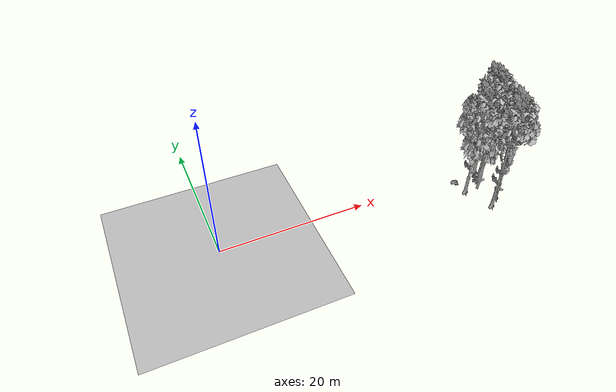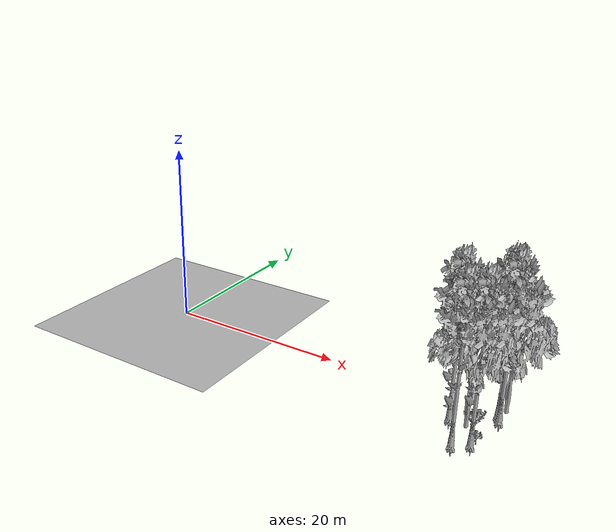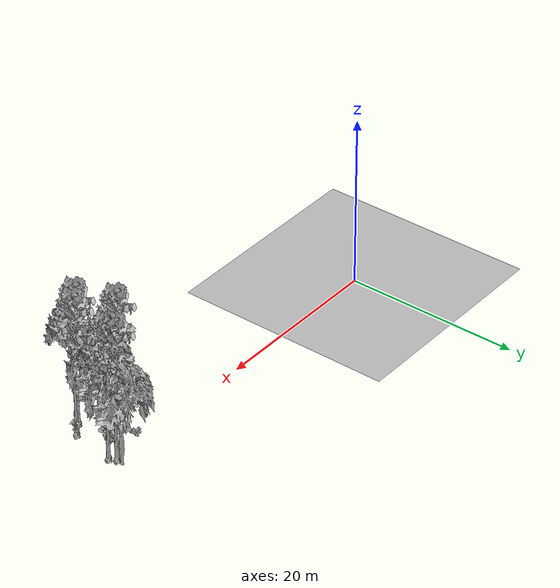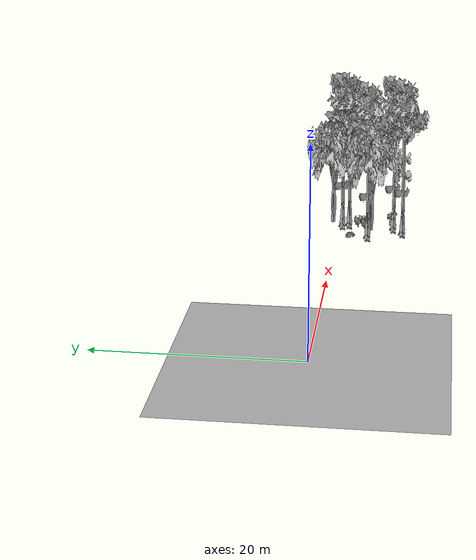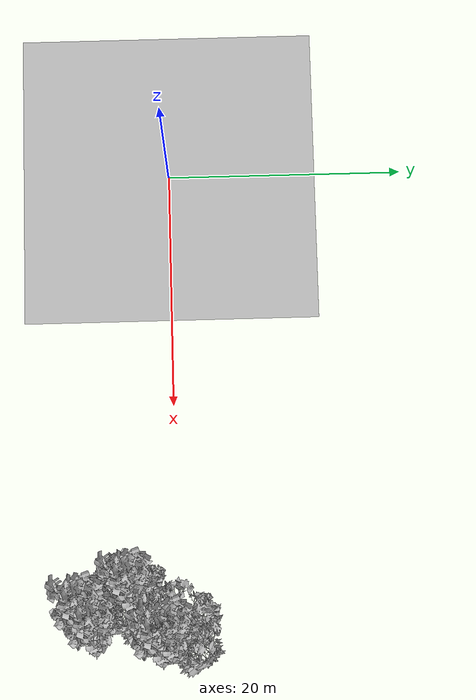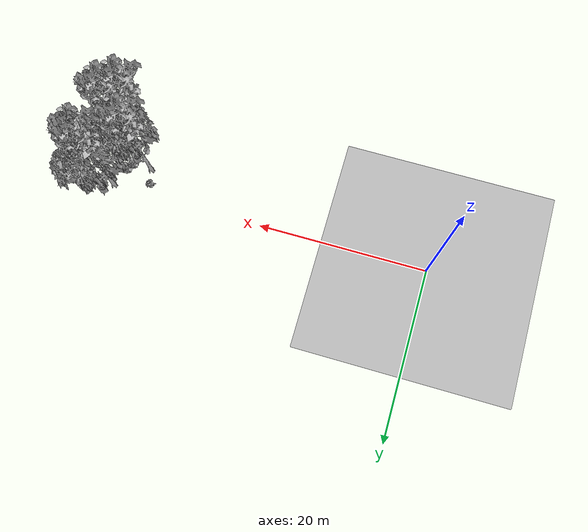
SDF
<sdf version="1.7">
 <world name="default">
  <model name="ground_plane">
   <static>1</static>
   <link name="link">
    <collision name="collision">
     <pose>-50 0 0 0 -0 0</pose>
     <geometry><plane><normal>0 0 1</normal><size>80 80</size></plane></geometry>
     <surface><contact><ode><min_depth>0.01</min_depth><max_vel>0</max_vel></ode></contact></surface>
    </collision>
    <visual name="grass">
     <cast_shadows>0</cast_shadows>
     <geometry>
      <mesh>
       <scale>0.46714285714285714 0.46714285714285714 0.1</scale>
       <uri>file://grass_plane/meshes/grass_plane.dae</uri>
      </mesh>
     </geometry>
    </visual>
   </link>
  </model>
  <model name="Tree 111">
   <static>1</static>
   <pose>36.2838748612335 -7.074095639635999 0 1.57079 -0 0</pose>
   <link name="link">
    <collision name="collision">
     <geometry><mesh><scale>3.5 5 3.5</scale><uri>model://tree_9/meshes/tree_9.obj</uri></mesh></geometry>
    </collision>
    <visual name="visual">
     <geometry><mesh><scale>3.5 5 3.5</scale><uri>model://tree_9/meshes/tree_9.obj</uri></mesh></geometry>
    </visual>
   </link>
  </model>
  <model name="Tree 334">
   <static>1</static>
   <pose>38.25983957889564 -0.2936260777369597 0 1.57079 -0 0</pose>
   <link name="link">
    <collision name="collision">
     <geometry><mesh><scale>3.5 5 3.5</scale><uri>model://tree_9/meshes/tree_9.obj</uri></mesh></geometry>
    </collision>
    <visual name="visual">
     <geometry><mesh><scale>3.5 5 3.5</scale><uri>model://tree_9/meshes/tree_9.obj</uri></mesh></geometry>
    </visual>
   </link>
  </model>
  <model name="Tree 404">
   <static>1</static>
   <pose>36.26148173920657 -3.5946910164059815 0 1.57079 -0 0</pose>
   <link name="link">
    <collision name="collision">
     <geometry><mesh><scale>3.5 5 3.5</scale><uri>model://tree_2/meshes/tree_2.obj</uri></mesh></geometry>
    </collision>
    <visual name="visual">
     <geometry><mesh><scale>3.5 5 3.5</scale><uri>model://tree_2/meshes/tree_2.obj</uri></mesh></geometry>
    </visual>
   </link>
  </model>
  <model name="Tree 512">
   <static>1</static>
   <pose>38.611465998514845 0.7733243995755927 0 1.57079 -0 0</pose>
   <link name="link">
    <collision name="collision">
     <geometry><mesh><scale>3.5 5 3.5</scale><uri>model://tree_2/meshes/tree_2.obj</uri></mesh></geometry>
    </collision>
    <visual name="visual">
     <geometry><mesh><scale>3.5 5 3.5</scale><uri>model://tree_2/meshes/tree_2.obj</uri></mesh></geometry>
    </visual>
   </link>
  </model>
  <model name="Tree 557">
   <static>1</static>
   <pose>37.69881469686317 -6.029298164993371 0 1.57079 -0 0</pose>
   <link name="link">
    <collision name="collision">
     <geometry><mesh><scale>3.5 5 3.5</scale><uri>model://tree_9/meshes/tree_9.obj</uri></mesh></geometry>
    </collision>
    <visual name="visual">
     <geometry><mesh><scale>3.5 5 3.5</scale><uri>model://tree_9/meshes/tree_9.obj</uri></mesh></geometry>
    </visual>
   </link>
  </model>
  <model name="Tree 606">
   <static>1</static>
   <pose>34.60119419439451 -3.29776864778367 0 1.57079 -0 0</pose>
   <link name="link">
    <collision name="collision">
     <geometry><mesh><scale>3.5 5 3.5</scale><uri>model://tree_9/meshes/tree_9.obj</uri></mesh></geometry>
    </collision>
    <visual name="visual">
     <geometry><mesh><scale>3.5 5 3.5</scale><uri>model://tree_9/meshes/tree_9.obj</uri></mesh></geometry>
    </visual>
   </link>
  </model>
  <model name="Tree 630">
   <static>1</static>
   <pose>38.6242029830653 -1.0374046306726967 0 1.57079 -0 0</pose>
   <link name="link">
    <collision name="collision">
     <geometry><mesh><scale>3.5 5 3.5</scale><uri>model://tree_9/meshes/tree_9.obj</uri></mesh></geometry>
    </collision>
    <visual name="visual">
     <geometry><mesh><scale>3.5 5 3.5</scale><uri>model://tree_9/meshes/tree_9.obj</uri></mesh></geometry>
    </visual>
   </link>
  </model>
  <model name="Bush 75">
   <static>1</static>
   <pose>36.98399716468735 -2.8200175105323737 0 1.57079 -0 0</pose>
   <link name="link">
    <collision name="collision">
     <geometry><mesh><scale>2 2 2</scale><uri>model://bush_0/meshes/bush_0.obj</uri></mesh></geometry>
     <surface><contact><collide_without_contact>false</collide_without_contact></contact></surface>
    </collision>
    <visual name="visual">
     <geometry><mesh><scale>2 2 2</scale><uri>model://bush_0/meshes/bush_0.obj</uri></mesh></geometry>
    </visual>
   </link>
  </model>
  <model name="Bush 155">
   <static>1</static>
   <pose>36.61003953071078 -2.8861989571893005 0 1.57079 -0 0</pose>
   <link name="link">
    <collision name="collision">
     <geometry><mesh><scale>2 2 2</scale><uri>model://bush_0/meshes/bush_0.obj</uri></mesh></geometry>
     <surface><contact><collide_without_contact>false</collide_without_contact></contact></surface>
    </collision>
    <visual name="visual">
     <geometry><mesh><scale>2 2 2</scale><uri>model://bush_0/meshes/bush_0.obj</uri></mesh></geometry>
    </visual>
   </link>
  </model>
  <model name="Bush 168">
   <static>1</static>
   <pose>34.007236156042126 -1.4637077121483983 0 1.57079 -0 0</pose>
   <link name="link">
    <collision name="collision">
     <geometry><mesh><scale>2 2 2</scale><uri>model://bush_2/meshes/bush_2.obj</uri></mesh></geometry>
     <surface><contact><collide_without_contact>false</collide_without_contact></contact></surface>
    </collision>
    <visual name="visual">
     <geometry><mesh><scale>2 2 2</scale><uri>model://bush_2/meshes/bush_2.obj</uri></mesh></geometry>
    </visual>
   </link>
  </model>
  <model name="Bush 233">
   <static>1</static>
   <pose>37.097777376069615 -2.1258721235891613 0 1.57079 -0 0</pose>
   <link name="link">
    <collision name="collision">
     <geometry><mesh><scale>2 2 2</scale><uri>model://bush_0/meshes/bush_0.obj</uri></mesh></geometry>
     <surface><contact><collide_without_contact>false</collide_without_contact></contact></surface>
    </collision>
    <visual name="visual">
     <geometry><mesh><scale>2 2 2</scale><uri>model://bush_0/meshes/bush_0.obj</uri></mesh></geometry>
    </visual>
   </link>
  </model>
  <model name="Bush 469">
   <static>1</static>
   <pose>38.03116943631795 -5.617014712144382 0 1.57079 -0 0</pose>
   <link name="link">
    <collision name="collision">
     <geometry><mesh><scale>2 2 2</scale><uri>model://bush_5/meshes/bush_5.obj</uri></mesh></geometry>
     <surface><contact><collide_without_contact>false</collide_without_contact></contact></surface>
    </collision>
    <visual name="visual">
     <geometry><mesh><scale>2 2 2</scale><uri>model://bush_5/meshes/bush_5.obj</uri></mesh></geometry>
    </visual>
   </link>
  </model>
 </world>
</sdf>
